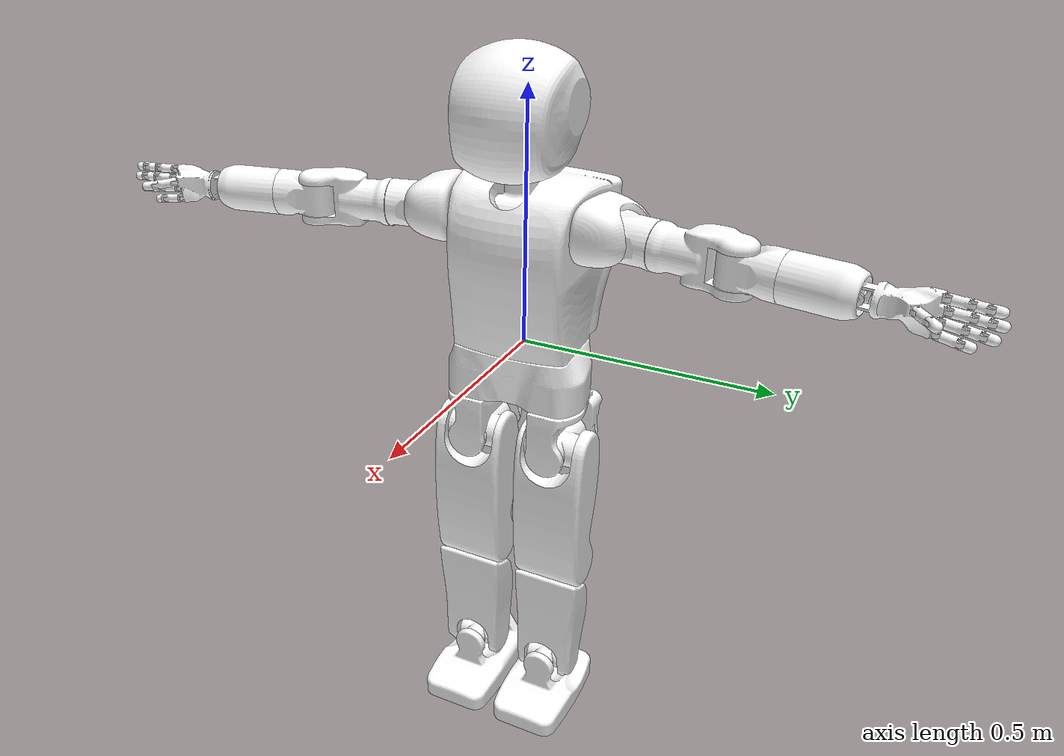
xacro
<?xml version="1.0"?>
<robot name="ar601" xmlns:xacro="http://www.ros.org/wiki/xacro">

    <xacro:include filename="$(find ar601_description)/urdf/common.xacro"/>
    <xacro:include filename="$(find ar601_description)/urdf/helper_macros.urdf.xacro"/>

    <xacro:include filename="$(find ar601_description)/urdf/ar601_primitive_collision_geoms.urdf.xacro"/>

    <xacro:include filename="$(find ar601_description)/urdf/ar601_original_inertia.urdf.xacro"/>
    <!-- NOT FIXED: -->
    <xacro:include filename="$(find ar601_description)/urdf/arm/ar601_arm.urdf.xacro"/>
    <xacro:include filename="$(find ar601_description)/urdf/arm/ar601_wrist.urdf.xacro"/>
    <!-- FIXED: -->
    <xacro:include filename="$(find ar601_description)/urdf/leg/ar601_leg_fixed.urdf.xacro"/>
    <xacro:include filename="$(find ar601_description)/urdf/torso/ar601_torso_fixed_no_collision.urdf.xacro"/>
    <xacro:include filename="$(find ar601_description)/urdf/head/ar601_head_fixed_no_collision.urdf.xacro"/>

    <ar601_torso_macro/>
    <ar601_arm_macro/>
    <ar601_wrist_macro/>
    <ar601_head_macro/>
    <ar601_leg_macro/>

    <xacro:include filename="$(find ar601_description)/gazebo/gazebo.urdf.xacro"/>

</robot>

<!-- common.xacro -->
<robot xmlns:xacro="http://www.ros.org/wiki/xacro">

  <!-- Joint dynamics -->

  <xacro:property name="leg_joint_friction"   value="0.1" />
  <xacro:property name="leg_joint_damping"  value="10.0" /> <!-- seems proper 10-20 -->
  <xacro:property name="arm_joint_friction"   value="1" />
  <xacro:property name="arm_joint_damping"  value="15" />
  <xacro:property name="head_joint_friction"   value="100.0" />
  <xacro:property name="head_joint_damping"  value="0.0" />
  <xacro:property name="torso_joint_friction"   value="100.0" />
  <xacro:property name="torso_joint_damping"  value="0.0" />
  <xacro:property name="wrist_joint_friction"   value="100.0" />
  <xacro:property name="wrist_joint_damping"  value="0.0" />

 <!--  NOMINAL EFFORT VALUES -->

<!--   STALL EFFORT VALUES -->

  <!--   30% STALL EFFORT VALUES -->

  <xacro:property name="hip_yaw_max_effort"  value="60.0" />
  <xacro:property name="hip_max_effort"  value="250.0" />
  <xacro:property name="knee_max_effort"  value="220.0" />
  <xacro:property name="ankle_max_effort"  value="60.0" />

    <!--   TEST STALL EFFORT VALUES -->

  <xacro:property name="ground_kp"  value="1000000.0" />
  <xacro:property name="ground_kd"  value="10000.0" />
  <xacro:property name="ground_mu1"  value="1.5" />
  <xacro:property name="ground_mu2"  value="1.5" />

</robot>

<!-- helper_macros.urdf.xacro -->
<robot  name="ar601" xmlns:xacro="http://www.ros.org/wiki/xacro">

   <xacro:macro name="joint_transmission_macro" params="joint_name">
    <transmission name="${joint_name}_transmssion">
      <type>transmission_interface/SimpleTransmission</type>
      <joint name="${joint_name}">
        <hardwareInterface>hardware_interface/EffortJointInterface</hardwareInterface>
      </joint>
      <actuator name="${joint_name}_motor">
        <hardwareInterface>EffortJointInterface</hardwareInterface>
        <mechanicalReduction>1</mechanicalReduction>
      </actuator>
    </transmission>
    <gazebo reference="${joint_name}">
      <implicitSpringDamper>1</implicitSpringDamper>
    </gazebo>
  </xacro:macro>

  <xacro:macro name="inertial_constant_macro" >
    <inertial>
      <mass value="0.5" />
      <origin xyz="0 0 0" />
      <inertia ixx="0.1" ixy="0.0" ixz="0.0"
               iyy="0.1" iyz="0.0"
               izz="0.1" />
    </inertial>
  </xacro:macro>

  <xacro:macro name="inertial_cuboid_macro" params="mass x_length y_length z_length">
    <inertial>
      <mass value="${mass}" />
      <origin xyz="0 0 0" />
      <inertia ixx="${(1/12) * mass* (y_length*y_length+ z_length*z_length)}" ixy="0.0" ixz="0.0"
               iyy="${(1/12) * mass* (x_length*x_length+ z_length*z_length)}" iyz="0.0"
               izz="${(1/12) * mass* (x_length*x_length+ y_length*y_length)}" />
    </inertial>
  </xacro:macro>

  <xacro:macro name="inertial_cuboid__with_pose_macro" params="mass x_length y_length z_length *origin">
    <inertial>
      <xacro:insert_block name="origin"/>
      <mass value="${mass}" />
      <inertia ixx="${(1/12) * mass* (y_length*y_length+ z_length*z_length)}" ixy="0.0" ixz="0.0"
               iyy="${(1/12) * mass* (x_length*x_length+ z_length*z_length)}" iyz="0.0"
               izz="${(1/12) * mass* (x_length*x_length+ y_length*y_length)}" />
    </inertial>
  </xacro:macro>

  <xacro:macro name="inertial_sphere_macro" params="mass diameter">
    <inertial>
      <mass value="${mass}" />
      <origin xyz="0 0 0" />
      <inertia ixx="${(2/5) * mass* ( (diameter*0.5)) * (diameter*0.5))}" ixy="0.0" ixz="0.0"
               iyy="${(2/5) * mass* ( (diameter*0.5)) * (diameter*0.5))}" iyz="0.0"
               izz="${(2/5) * mass* ( (diameter*0.5)) * (diameter*0.5))}" />
    </inertial>
  </xacro:macro>

  <xacro:macro name="inertial_sphere_with_pose_macro" params="mass diameter *origin">
    <inertial>
      <xacro:insert_block name="origin"/>
      <mass value="${mass}" />
      <inertia ixx="${(2/5) * mass* ( (diameter*0.5)) * (diameter*0.5))}" ixy="0.0" ixz="0.0"
               iyy="${(2/5) * mass* ( (diameter*0.5)) * (diameter*0.5))}" iyz="0.0"
               izz="${(2/5) * mass* ( (diameter*0.5)) * (diameter*0.5))}" />
    </inertial>
  </xacro:macro>

  <xacro:macro name="visual_macro" params="name">
    <visual>
      <origin
        xyz="0 0 0"
        rpy="0 0 0" />
      <geometry>
        <mesh
          filename="package://ar601_description/meshes/${name}.STL" />
      </geometry>
      <material
        name="">
        <color
          rgba="1 1 1 1" />
      </material>
    </visual>
  </xacro:macro>

  <xacro:macro name="collision_mesh_macro" params="name">
      <collision>
      <origin
        xyz="0 0 0"
        rpy="0 0 0" />
      <geometry>
        <mesh
          filename="package://ar601_description/meshes/${name}.STL" />
      </geometry>
    </collision>
  </xacro:macro>

  <xacro:macro name="link_macro" params="name">
    <link
      name="${name}">
      <xacro:call macro="${name}_inertial_macro"/>
      <xacro:call macro="${name}_collision_geom_macro"/>
      <visual_macro name="${name}" />
    </link>
  </xacro:macro>

  <xacro:macro name="link_macro_2" params="name">
    <link
      name="${name}">
      <xacro:call macro="${name}_inertial_macro"/>
      <visual_macro name="${name}" />
    </link>
  </xacro:macro>

</robot>

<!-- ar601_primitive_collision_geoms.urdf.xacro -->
<robot name="ar601" xmlns:xacro="http://www.ros.org/wiki/xacro">

  <xacro:include filename="$(find ar601_description)/urdf/head/ar601_head_primitive_collision_geoms.urdf.xacro" />
  <xacro:include filename="$(find ar601_description)/urdf/leg/ar601_leg_primitive_collision_geoms.urdf.xacro" />
  <xacro:include filename="$(find ar601_description)/urdf/arm/ar601_arm_primitive_collision_geoms.urdf.xacro" />
  <xacro:include filename="$(find ar601_description)/urdf/arm/ar601_wrist_primitive_collision_geoms.urdf.xacro" />
  <xacro:include filename="$(find ar601_description)/urdf/torso/ar601_torso_primitive_collision_geoms.urdf.xacro" />

</robot>

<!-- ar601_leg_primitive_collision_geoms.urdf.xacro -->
<robot  name="robotis_op2" xmlns:xacro="http://www.ros.org/wiki/xacro">

<xacro:macro name="LPelvis_collision_geom_macro">
    <collision>
      <origin xyz="0.000000 -0.010580 0.028437" />
      <geometry>
        <box size="0.045 0.08175 0.028652" />
      </geometry>
    </collision>
</xacro:macro>

<xacro:macro name="LHip_collision_geom_macro">
    <collision>
      <origin xyz="0.000079 0.018242 0.013873" />
      <geometry>
        <box size="0.001 0.001 0.001"/>
      </geometry>
    </collision>
</xacro:macro>

<xacro:macro name="LThigh_collision_geom_macro">
    <collision>
      <origin xyz="-0.062965 -0.000323 0.000692" />
      <geometry>
        <box size="0.093 0.035 0.045"/>
      </geometry>
    </collision>
</xacro:macro>

<xacro:macro name="LTibia_collision_geom_macro">
    <collision>
      <origin xyz="-0.053955 0.006548 -0.000592" />
      <geometry>
        <box size="0.093 0.035 0.045"/>
      </geometry>
    </collision>
</xacro:macro>

<xacro:macro name="LAnkle_collision_geom_macro">
    <collision>
      <origin xyz="-0.000214 -0.018536 0.013873" />
      <geometry>
        <box size="0.028652 0.08175 0.045"/>
      </geometry>
    </collision>
</xacro:macro>

<xacro:macro name="LFoot_collision_geom_macro">
    <collision>
      <origin xyz="0.02 0 -0.05275" />
      <geometry>
        <box size="0.234 0.134 0.1055"/>
      </geometry>
    </collision>
</xacro:macro>

<xacro:macro name="RPelvis_collision_geom_macro">
    <collision>
      <origin xyz="0.000000 0.010580 0.028437" />
      <geometry>
        <box size="0.045 0.08175 0.028652" />
      </geometry>
    </collision>
</xacro:macro>

<xacro:macro name="RHip_collision_geom_macro">
    <collision>
      <origin xyz="0.000079 -0.018242 0.0138735" />
      <geometry>
        <box size="0.001 0.001 0.001"/>
      </geometry>
    </collision>
</xacro:macro>

<xacro:macro name="RThigh_collision_geom_macro">
    <collision>
      <origin xyz="0.062965 -0.000323 0.000692" />
      <geometry>
        <box size="0.093 0.035 0.045"/>
      </geometry>
    </collision>
</xacro:macro>

<xacro:macro name="RTibia_collision_geom_macro">
    <collision>
      <origin xyz="0.053955 0.006548 -0.000592" />
      <geometry>
        <box size="0.093 0.035 0.045"/>
      </geometry>
    </collision>
</xacro:macro>

<xacro:macro name="RAnkle_collision_geom_macro">
    <collision>
      <origin xyz="-0.000214 -0.018536 0.013873" />
      <geometry>
        <box size="0.028652 0.08175 0.045"/>
      </geometry>
    </collision>
</xacro:macro>

<xacro:macro name="RFoot_collision_geom_macro">
    <collision>
      <origin xyz="0.02 0 -0.05275" />
      <geometry>
        <box size="0.234 0.134 0.1055"/>
      </geometry>
    </collision>
</xacro:macro>

</robot>

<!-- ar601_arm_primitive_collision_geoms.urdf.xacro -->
<robot  name="ar601" xmlns:xacro="http://www.ros.org/wiki/xacro">

<xacro:macro name="LShoulder1_collision_geom_macro">
    <collision>
      <origin xyz="-0.0031158909 0.020443695 -0.019663084" />
      <geometry>
        <box size="0.001 0.001 0.001"  scale="1 1 1"/>
      </geometry>
    </collision>
</xacro:macro>

<xacro:macro name="RShoulder1_collision_geom_macro">
    <collision>
      <origin xyz="-0.013522619 -0.010264050 0.0013935747" />
      <geometry>
        <box size="0.016 0.033 0.02165" />
      </geometry>
    </collision>
</xacro:macro>

<xacro:macro name="LShoulder2_collision_geom_macro">
    <collision>
      <origin xyz="-0.036239 0.000734 0.000660" />
      <geometry>
        <box size="0.06 0.032 0.035" />
      </geometry>
    </collision>
</xacro:macro>

<xacro:macro name="RShoulder2_collision_geom_macro">
    <collision>
      <origin xyz="0.016 0.016 0" rpy="0 0 0" />
      <geometry>
        <box size="0.032 0.032 0.035" />
      </geometry>
    </collision>
</xacro:macro>

<xacro:macro name="LShoulder3_collision_geom_macro">
    <collision>
      <origin xyz="0.016 0 0" rpy="0 0 0" />
      <geometry>
        <box size="0.064 0.032 0.032" />
      </geometry>
    </collision>
</xacro:macro>

<xacro:macro name="RShoulder3_collision_geom_macro">
    <collision>
      <geometry>
        <box size="0.032 0.005 0.032" />
      </geometry>
    </collision>
</xacro:macro>

<xacro:macro name="LElbow_collision_geom_macro">
    <collision>
      <origin xyz="0.016 0 0" rpy="0 0 0" />
      <geometry>
        <box size="0.032 0.005 0.032" />
      </geometry>
    </collision>
</xacro:macro>

<xacro:macro name="RElbow_collision_geom_macro">
    <collision>
      <geometry>
        <box size="0.001 0.001 0.001" />
      </geometry>
    </collision>
</xacro:macro>

<xacro:macro name="LArm_collision_geom_macro">
    <collision>
      <origin xyz="-0.013523 0.010264 0.001394" />
      <geometry>
        <box size="0.016 0.033 0.02165" />
      </geometry>
    </collision>
</xacro:macro>

<xacro:macro name="RArm_collision_geom_macro">
    <collision>
      <origin xyz="-0.036239 0.000734 -0.000660" />
      <geometry>
        <box size="0.06 0.032 0.035"/>
      </geometry>
    </collision>
</xacro:macro>

</robot>

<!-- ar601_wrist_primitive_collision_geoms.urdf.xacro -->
<robot  name="ar601" xmlns:xacro="http://www.ros.org/wiki/xacro">

<xacro:macro name="LWrist1_collision_geom_macro">
    <collision>
      <origin xyz="-0.0031158909 0.020443695 -0.019663084" />
      <geometry>
        <box size="0.001 0.001 0.001"  scale="1 1 1"/>
      </geometry>
    </collision>
</xacro:macro>

<xacro:macro name="RWrist1_collision_geom_macro">
    <collision>
      <origin xyz="-0.013522619 -0.010264050 0.0013935747" />
      <geometry>
        <box size="0.016 0.033 0.02165" />
      </geometry>
    </collision>
</xacro:macro>

<xacro:macro name="LWrist2_collision_geom_macro">
    <collision>
      <origin xyz="-0.036239 0.000734 0.000660" />
      <geometry>
        <box size="0.06 0.032 0.035" />
      </geometry>
    </collision>
</xacro:macro>

<xacro:macro name="RWrist2_collision_geom_macro">
    <collision>
      <origin xyz="0.016 0.016 0" rpy="0 0 0" />
      <geometry>
        <box size="0.032 0.032 0.035" />
      </geometry>
    </collision>
</xacro:macro>

<xacro:macro name="LFinger1_1_collision_geom_macro">
    <collision>
      <origin xyz="0.016 0 0" rpy="0 0 0" />
      <geometry>
        <box size="0.064 0.032 0.032" />
      </geometry>
    </collision>
</xacro:macro>

<xacro:macro name="RFinger1_1_collision_geom_macro">
    <collision>
      <geometry>
        <box size="0.032 0.005 0.032" />
      </geometry>
    </collision>
</xacro:macro>

<xacro:macro name="LFinger1_2_collision_geom_macro">
    <collision>
      <origin xyz="0.016 0 0" rpy="0 0 0" />
      <geometry>
        <box size="0.032 0.005 0.032" />
      </geometry>
    </collision>
</xacro:macro>

<xacro:macro name="RFinger1_2_collision_geom_macro">
    <collision>
      <geometry>
        <box size="0.001 0.001 0.001" />
      </geometry>
    </collision>
</xacro:macro>

<xacro:macro name="LFinger2_1_collision_geom_macro">
    <collision>
      <origin xyz="-0.013523 0.010264 0.001394" />
      <geometry>
        <box size="0.016 0.033 0.02165" />
      </geometry>
    </collision>
</xacro:macro>

<xacro:macro name="RFinger2_1_collision_geom_macro">
    <collision>
      <origin xyz="-0.036239 0.000734 -0.000660" />
      <geometry>
        <box size="0.06 0.032 0.035"/>
      </geometry>
    </collision>
</xacro:macro>

<xacro:macro name="LFinger2_2_collision_geom_macro">
    <collision>
      <origin xyz="-0.036239 0.000734 -0.000660" />
      <geometry>
        <box size="0.06 0.032 0.035"/>
      </geometry>
    </collision>
</xacro:macro>

<xacro:macro name="RFinger2_2_collision_geom_macro">
    <collision>
      <origin xyz="-0.036239 0.000734 -0.000660" />
      <geometry>
        <box size="0.06 0.032 0.035"/>
      </geometry>
    </collision>
</xacro:macro>

<xacro:macro name="LFinger2_3_collision_geom_macro">
    <collision>
      <origin xyz="-0.036239 0.000734 -0.000660" />
      <geometry>
        <box size="0.06 0.032 0.035"/>
      </geometry>
    </collision>
</xacro:macro>

<xacro:macro name="RFinger2_3_collision_geom_macro">
    <collision>
      <origin xyz="-0.036239 0.000734 -0.000660" />
      <geometry>
        <box size="0.06 0.032 0.035"/>
      </geometry>
    </collision>
</xacro:macro>

<xacro:macro name="LFinger3_1_collision_geom_macro">
    <collision>
      <origin xyz="-0.036239 0.000734 -0.000660" />
      <geometry>
        <box size="0.06 0.032 0.035"/>
      </geometry>
    </collision>
</xacro:macro>

<xacro:macro name="RFinger3_1_collision_geom_macro">
    <collision>
      <origin xyz="-0.036239 0.000734 -0.000660" />
      <geometry>
        <box size="0.06 0.032 0.035"/>
      </geometry>
    </collision>
</xacro:macro>

<xacro:macro name="LFinger3_2_collision_geom_macro">
    <collision>
      <origin xyz="-0.036239 0.000734 -0.000660" />
      <geometry>
        <box size="0.06 0.032 0.035"/>
      </geometry>
    </collision>
</xacro:macro>

<xacro:macro name="RFinger3_2_collision_geom_macro">
    <collision>
      <origin xyz="-0.036239 0.000734 -0.000660" />
      <geometry>
        <box size="0.06 0.032 0.035"/>
      </geometry>
    </collision>
</xacro:macro>

<xacro:macro name="LFinger3_3_collision_geom_macro">
    <collision>
      <origin xyz="-0.036239 0.000734 -0.000660" />
      <geometry>
        <box size="0.06 0.032 0.035"/>
      </geometry>
    </collision>
</xacro:macro>

<xacro:macro name="RFinger3_3_collision_geom_macro">
    <collision>
      <origin xyz="-0.036239 0.000734 -0.000660" />
      <geometry>
        <box size="0.06 0.032 0.035"/>
      </geometry>
    </collision>
</xacro:macro>

<xacro:macro name="LFinger4_1_collision_geom_macro">
    <collision>
      <origin xyz="-0.036239 0.000734 -0.000660" />
      <geometry>
        <box size="0.06 0.032 0.035"/>
      </geometry>
    </collision>
</xacro:macro>

<xacro:macro name="RFinger4_1_collision_geom_macro">
    <collision>
      <origin xyz="-0.036239 0.000734 -0.000660" />
      <geometry>
        <box size="0.06 0.032 0.035"/>
      </geometry>
    </collision>
</xacro:macro>

<xacro:macro name="LFinger4_2_collision_geom_macro">
    <collision>
      <origin xyz="-0.036239 0.000734 -0.000660" />
      <geometry>
        <box size="0.06 0.032 0.035"/>
      </geometry>
    </collision>
</xacro:macro>

<xacro:macro name="RFinger4_2_collision_geom_macro">
    <collision>
      <origin xyz="-0.036239 0.000734 -0.000660" />
      <geometry>
        <box size="0.06 0.032 0.035"/>
      </geometry>
    </collision>
</xacro:macro>

<xacro:macro name="LFinger4_3_collision_geom_macro">
    <collision>
      <origin xyz="-0.036239 0.000734 -0.000660" />
      <geometry>
        <box size="0.06 0.032 0.035"/>
      </geometry>
    </collision>
</xacro:macro>

<xacro:macro name="RFinger4_3_collision_geom_macro">
    <collision>
      <origin xyz="-0.036239 0.000734 -0.000660" />
      <geometry>
        <box size="0.06 0.032 0.035"/>
      </geometry>
    </collision>
</xacro:macro>

<xacro:macro name="LFinger5_1_collision_geom_macro">
    <collision>
      <origin xyz="-0.036239 0.000734 -0.000660" />
      <geometry>
        <box size="0.06 0.032 0.035"/>
      </geometry>
    </collision>
</xacro:macro>

<xacro:macro name="RFinger5_1_collision_geom_macro">
    <collision>
      <origin xyz="-0.036239 0.000734 -0.000660" />
      <geometry>
        <box size="0.06 0.032 0.035"/>
      </geometry>
    </collision>
</xacro:macro>

<xacro:macro name="LFinger5_2_collision_geom_macro">
    <collision>
      <origin xyz="-0.036239 0.000734 -0.000660" />
      <geometry>
        <box size="0.06 0.032 0.035"/>
      </geometry>
    </collision>
</xacro:macro>

<xacro:macro name="RFinger5_2_collision_geom_macro">
    <collision>
      <origin xyz="-0.036239 0.000734 -0.000660" />
      <geometry>
        <box size="0.06 0.032 0.035"/>
      </geometry>
    </collision>
</xacro:macro>

</robot>

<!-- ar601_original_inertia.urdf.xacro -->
<robot name="ar601" xmlns:xacro="http://www.ros.org/wiki/xacro">

  <xacro:include filename="$(find ar601_description)/urdf/head/ar601_head_original_inertia.urdf.xacro" />
  <xacro:include filename="$(find ar601_description)/urdf/leg/ar601_leg_original_inertia.urdf.xacro" />
  <xacro:include filename="$(find ar601_description)/urdf/arm/ar601_arm_original_inertia.urdf.xacro" />
  <xacro:include filename="$(find ar601_description)/urdf/arm/ar601_wrist_original_inertia.urdf.xacro" />
  <xacro:include filename="$(find ar601_description)/urdf/torso/ar601_torso_original_inertia.urdf.xacro" />

</robot>

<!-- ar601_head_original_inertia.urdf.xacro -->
<robot  name="robotis_op2" xmlns:xacro="http://www.ros.org/wiki/xacro">

<xacro:macro name="Neck1_inertial_macro">
    <inertial>
      <origin
        xyz="-0.0222927487404251 4.47895651753766E-05 0.0310409976295018"
        rpy="0 0 0" />
      <mass
        value="0.657320428434859" />
      <inertia
        ixx="0.00102025512184757"
        ixy="0.0"
        ixz="0.0"
        iyy="0.00120134781263084"
        iyz="0.0"
        izz="0.000718372081172033" />
    </inertial>
</xacro:macro>

<xacro:macro name="Neck2_inertial_macro">
    <inertial>
      <origin
        xyz="-9.38630904016337E-06 4.42165265520866E-05 -0.0162910790688592"
        rpy="0 0 0" />
      <mass
        value="0.0167205530633327" />
      <inertia
        ixx="6.21421984464677E-06"
        ixy="0.0"
        ixz="0.0"
        iyy="1.28553666419653E-05"
        iyz="0.0"
        izz="1.23400064727747E-05" />
    </inertial>
</xacro:macro>

<xacro:macro name="Head1_inertial_macro">
    <inertial>
      <origin
        xyz="-9.38941181994821E-06 4.42605420928731E-05 -2.87270207621759E-13"
        rpy="0 0 0" />
      <mass
        value="0.140258674510404" />
      <inertia
        ixx="0.000255527506833601"
        ixy="0.0"
        ixz="0.0"
        iyy="2.64614495249746E-05"
        iyz="0.0"
        izz="0.000265796055755356" />
    </inertial>
</xacro:macro>

<xacro:macro name="Head2_inertial_macro">
    <inertial>
      <origin
        xyz="0.0367567218407244 6.13069479271212E-05 0.0741939345619121"
        rpy="0 0 0" />
      <mass
        value="5.51543814682702" />
      <inertia
        ixx="0.0328094469174202"
        ixy="0.0"
        ixz="0.0"
        iyy="0.0336400080305931"
        iyz="0.0"
        izz="0.0379699861871773" />
    </inertial>
</xacro:macro>

</robot>

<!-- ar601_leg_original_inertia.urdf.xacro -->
<robot  name="robotis_op2" xmlns:xacro="http://www.ros.org/wiki/xacro">

<xacro:macro name="LPelvis_inertial_macro">
    <inertial>
      <origin
        xyz="-0.034 0.0 0.054"
        rpy="0 0 0" />
      <mass
        value="0.908" />
      <inertia
        ixx="0.00151"
        ixy="0.0"
        ixz="0.0"
        iyy="0.00414"
        iyz="0.0"
        izz="0.0037" />
    </inertial>
</xacro:macro>

<xacro:macro name="RPelvis_inertial_macro">
    <inertial>
      <origin
        xyz="-0.034 0.0 0.054"
        rpy="0 0 0" />
      <mass
        value="0.908" />
      <inertia
        ixx="0.00151"
        ixy="0.0"
        ixz="0.0"
        iyy="0.00414"
        iyz="0.0"
        izz="0.0037" />
    </inertial>
</xacro:macro>

<xacro:macro name="LHip_inertial_macro">
    <inertial>
      <origin
        xyz="-0.014 0.0 0.0"
        rpy="0 0 0" />
      <mass
        value="0.755" />
      <inertia
        ixx="0.000786"
        ixy="0.0"
        ixz="0.0"
        iyy="0.00127"
        iyz="0.0"
        izz="0.00156" />
    </inertial>
</xacro:macro>

<xacro:macro name="RHip_inertial_macro">
    <inertial>
      <origin
        xyz="-0.014 0.0 0.0"
        rpy="0 0 0" />
      <mass
        value="0.755" />
      <inertia
        ixx="0.000786"
        ixy="0.0"
        ixz="0.0"
        iyy="0.00127"
        iyz="0.0"
        izz="0.00156" />
    </inertial>
</xacro:macro>

<xacro:macro name="LThigh_inertial_macro">
    <inertial>
      <origin
        xyz="0.008 0.007 -0.17"
        rpy="0 0 0" />
      <mass
        value="4.04" />
      <inertia
        ixx="0.0407"
        ixy="0.0"
        ixz="0.0"
        iyy="0.0352"
        iyz="0.0"
        izz="0.0117" />
    </inertial>
</xacro:macro>

<xacro:macro name="RThigh_inertial_macro">
    <inertial>
      <origin
        xyz="0.008 -0.007 -0.17"
        rpy="0 0 0" />
      <mass
        value="4.04" />
      <inertia
        ixx="0.0407"
        ixy="0.0"
        ixz="0.0"
        iyy="0.0352"
        iyz="0.0"
        izz="0.0117" />
    </inertial>
</xacro:macro>

<xacro:macro name="LTibia_inertial_macro">
    <inertial>
      <origin
        xyz="0.002 0.004 -0.153"
        rpy="0 0 0" />
      <mass
        value="2.441" />
      <inertia
        ixx="0.0138"
        ixy="0.0"
        ixz="0.0"
        iyy="0.0113"
        iyz="0.0"
        izz="0.00566" />
    </inertial>
</xacro:macro>

<xacro:macro name="RTibia_inertial_macro">
    <inertial>
      <origin
        xyz="0.002 -0.004 -0.153"
        rpy="0 0 0" />
      <mass
        value="2.441" />
      <inertia
        ixx="0.0138"
        ixy="0.0"
        ixz="0.0"
        iyy="0.0113"
        iyz="0.0"
        izz="0.00566" />
    </inertial>
</xacro:macro>

<xacro:macro name="LAnkle_inertial_macro">
    <inertial>
      <origin
        xyz="-0.007 -0.001 0.0"
        rpy="0 0 0" />
      <mass
        value="0.297" />
      <inertia
        ixx="0.000161"
        ixy="0.0"
        ixz="0.0"
        iyy="0.000283"
        iyz="0.0"
        izz="0.000346" />
    </inertial>
</xacro:macro>

<xacro:macro name="RAnkle_inertial_macro">
    <inertial>
      <origin
        xyz="-0.007 0.001 0.0"
        rpy="0 0 0" />
      <mass
        value="0.297" />
      <inertia
        ixx="0.000161"
        ixy="0.0"
        ixz="0.0"
        iyy="0.000283"
        iyz="0.0"
        izz="0.000346" />
    </inertial>
</xacro:macro>

<xacro:macro name="LFoot_inertial_macro">
    <inertial>
      <origin
        xyz="0.008 -0.004 -0.072"
        rpy="0 0 0" />
      <mass
        value="2.208" />
      <inertia
        ixx="0.00541"
        ixy="0.0"
        ixz="0.0"
        iyy="0.0129"
        iyz="0.0"
        izz="0.0152" />
    </inertial>
</xacro:macro>

<xacro:macro name="RFoot_inertial_macro">
    <inertial>
      <origin
        xyz="0.008 0.004 -0.072"
        rpy="0 0 0" />
      <mass
        value="2.208" />
      <inertia
        ixx="0.00541"
        ixy="0.0"
        ixz="0.0"
        iyy="0.0129"
        iyz="0.0"
        izz="0.0152" />
    </inertial>
</xacro:macro>

</robot>

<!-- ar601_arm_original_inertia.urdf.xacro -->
<robot  name="ar601" xmlns:xacro="http://www.ros.org/wiki/xacro">

<xacro:macro name="LShoulder1_inertial_macro">
    <inertial>
      <origin
        xyz="0.0119 0.0447 0.0125"
        rpy="0 0 0" />
      <mass
        value="0.702" />
      <inertia
        ixx="0.00107"
        ixy="0.0"
        ixz="0.0"
        iyy="0.00208"
        iyz="0.0"
        izz="0.00181" />
    </inertial>
</xacro:macro>

<xacro:macro name="RShoulder1_inertial_macro">
    <inertial>
      <origin
        xyz="0.0119 -0.0447 0.0125"
        rpy="0 0 0" />
      <mass
        value="0.702" />
      <inertia
        ixx="0.00107"
        ixy="0.0"
        ixz="0.0"
        iyy="0.00208"
        iyz="0.0"
        izz="0.00181" />
    </inertial>
</xacro:macro>

<xacro:macro name="LShoulder2_inertial_macro">
    <inertial>
      <origin
        xyz="0.0512 0.0264 0.00120"
        rpy="0 0 0" />
      <mass
        value="0.710" />
      <inertia
        ixx="0.00114"
        ixy="0.0"
        ixz="0.0"
        iyy="0.000678"
        iyz="0.0"
        izz="0.00118" />
    </inertial>
</xacro:macro>

<xacro:macro name="RShoulder2_inertial_macro">
    <inertial>
      <origin
        xyz="0.0512 -0.0264 0.00120"
        rpy="0 0 0" />
      <mass
        value="0.710" />
      <inertia
        ixx="0.00114"
        ixy="0.0"
        ixz="0.0"
        iyy="0.000678"
        iyz="0.0"
        izz="0.00118" />
    </inertial>
</xacro:macro>

<xacro:macro name="LShoulder3_inertial_macro">
    <inertial>
      <origin
        xyz="0 0.0754 0"
        rpy="0 0 0" />
      <mass
        value="0.924" />
      <inertia
        ixx="0.00281"
        ixy="0.0"
        ixz="0.0"
        iyy="0.00111"
        iyz="0.0"
        izz="0.00248" />
    </inertial>
</xacro:macro>

<xacro:macro name="RShoulder3_inertial_macro">
    <inertial>
      <origin
        xyz="0 -0.0754 0"
        rpy="0 0 0" />
      <mass
        value="0.923986049465604" />
      <inertia
        ixx="0.00281"
        ixy="0.0"
        ixz="0.0"
        iyy="0.00111"
        iyz="0.0"
        izz="0.00248" />
    </inertial>
</xacro:macro>

<xacro:macro name="LElbow_inertial_macro">
    <inertial>
      <origin
        xyz="-0.006 0.0268 -0.0306"
        rpy="0 0 0" />
      <mass
        value="0.067" />
      <inertia
        ixx="0.000109"
        ixy="0.0"
        ixz="0.0"
        iyy="8.7E-05"
        iyz="0.0"
        izz="0.000124" />
    </inertial>
</xacro:macro>

<xacro:macro name="RElbow_inertial_macro">
    <inertial>
      <origin
        xyz="-0.006 -0.0268 -0.0306"
        rpy="0 0 0" />
      <mass
        value="0.067" />
      <inertia
        ixx="0.000109"
        ixy="0.0"
        ixz="0.0"
        iyy="8.7E-05"
        iyz="0.0"
        izz="0.000124" />
    </inertial>
</xacro:macro>

<xacro:macro name="LArm_inertial_macro">
    <inertial>
      <origin
        xyz="0 0.0546 0.0003"
        rpy="0 0 0" />
      <mass
        value="0.698" />
      <inertia
        ixx="0.00106"
        ixy="0.0"
        ixz="0.0"
        iyy="0.000705"
        iyz="0.0"
        izz="0.00107" />
    </inertial>
</xacro:macro>

<xacro:macro name="RArm_inertial_macro">
    <inertial>
      <origin
        xyz="0 -0.0546 0.0003"
        rpy="0 0 0" />
      <mass
        value="0.698" />
      <inertia
        ixx="0.00106"
        ixy="0.0"
        ixz="0.0"
        iyy="0.000705"
        iyz="0.0"
        izz="0.00107" />
    </inertial>
</xacro:macro>

</robot>

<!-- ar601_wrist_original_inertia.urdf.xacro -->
<robot  name="ar601" xmlns:xacro="http://www.ros.org/wiki/xacro">

<xacro:macro name="LWrist1_inertial_macro">
    <inertial>
      <origin
        xyz="8.69257801849876E-09 0 -8.69257799074319E-09"
        rpy="0 0 0" />
      <mass
        value="0.00354841244692992" />
      <inertia
        ixx="0"
        ixy="0.0"
        ixz="0.0"
        iyy="0"
        iyz="0.0"
        izz="0" />
    </inertial>
</xacro:macro>

<xacro:macro name="RWrist1_inertial_macro">
    <inertial>
      <origin
        xyz="-8.69257804625434E-09 -1.11022302462516E-16 -8.69257799074319E-09"
        rpy="0 0 0" />
      <mass
        value="0.00354841244692995" />
      <inertia
        ixx="0"
        ixy="0.0"
        ixz="0.0"
        iyy="0"
        iyz="0.0"
        izz="0" />
    </inertial>
</xacro:macro>

<xacro:macro name="LWrist2_inertial_macro">
    <inertial>
      <origin
        xyz="-0.00320146376134629 0.0679998358897447 -0.00139578498789278"
        rpy="0 0 0" />
      <mass
        value="0.106503207491186" />
      <inertia
        ixx="0.000160140258431206"
        ixy="0.0"
        ixz="0.0"
        iyy="7.18787865803972E-05"
        iyz="0.0"
        izz="0.000161242457643774" />
    </inertial>
</xacro:macro>

<xacro:macro name="RWrist2_inertial_macro">
    <inertial>
      <origin
        xyz="-0.0032015407111433 -0.0680002451287101 -0.00139605167258255"
        rpy="0 0 0" />
      <mass
        value="0.106500992906003" />
      <inertia
        ixx="0.000160137434624347"
        ixy="0.0"
        ixz="0.0"
        iyy="7.18756092477474E-05"
        iyz="0.0"
        izz="0.000161241258582528" />
    </inertial>
</xacro:macro>

<xacro:macro name="LFinger1_1_inertial_macro">
    <inertial>
      <origin
        xyz="0.017392149570403 0.0125768799508672 -0.00399999938736578"
        rpy="0 0 0" />
      <mass
        value="0.00794971429092078" />
      <inertia
        ixx="6.15322908627996E-07"
        ixy="0.0"
        ixz="0.0"
        iyy="8.19342049389076E-07"
        iyz="0.0"
        izz="1.16701160817821E-06" />
    </inertial>
</xacro:macro>

<xacro:macro name="RFinger1_1_inertial_macro">
    <inertial>
      <origin
        xyz="0.018058 -0.011601 -0.004"
        rpy="0 0 0" />
      <mass
        value="0.0079497" />
      <inertia
        ixx="5.7022E-07"
        ixy="0.0"
        ixz="0.0"
        iyy="8.6444E-07"
        iyz="0.0"
        izz="1.167E-06" />
    </inertial>
</xacro:macro>

<xacro:macro name="LFinger1_2_inertial_macro">
    <inertial>
      <origin
        xyz="0.0105994545023848 0.00682969355090124 -0.00399999152754377"
        rpy="0 0 0" />
      <mass
        value="0.0041977190113557" />
      <inertia
        ixx="2.06802404520768E-07"
        ixy="0.0"
        ixz="0.0"
        iyy="2.21544071243177E-07"
        iyz="0.0"
        izz="2.61121380624231E-07" />
    </inertial>
</xacro:macro>

<xacro:macro name="RFinger1_2_inertial_macro">
    <inertial>
      <origin
        xyz="0.0104605997712183 -0.00704052558917401 -0.00400000848701126"
        rpy="0 0 0" />
      <mass
        value="0.00419771897410452" />
      <inertia
        ixx="2.09142237590012E-07"
        ixy="0.0"
        ixz="0.0"
        iyy="2.19204240697583E-07"
        iyz="0.0"
        izz="2.61121384273268E-07" />
    </inertial>
</xacro:macro>

<xacro:macro name="LFinger2_1_inertial_macro">
    <inertial>
      <origin
        xyz="0.00549196215025359 0.0208173591048728 -0.00362500054881426"
        rpy="0 0 0" />
      <mass
        value="0.00794969630364376" />
      <inertia
        ixx="1.07237570353924E-06"
        ixy="0.0"
        ixz="0.0"
        iyy="3.62556603064786E-07"
        iyz="0.0"
        izz="1.16674304524627E-06" />
    </inertial>
</xacro:macro>

<xacro:macro name="RFinger2_1_inertial_macro">
    <inertial>
      <origin
        xyz="0.00466411344108193 -0.0210181956784309 -0.00362576268809778"
        rpy="0 0 0" />
      <mass
        value="0.00794969377283116" />
      <inertia
        ixx="1.09026286614019E-06"
        ixy="0.0"
        ixz="0.0"
        iyy="3.44669160887216E-07"
        iyz="0.0"
        izz="1.16674314947762E-06" />
    </inertial>
</xacro:macro>

<xacro:macro name="LFinger2_2_inertial_macro">
    <inertial>
      <origin
        xyz="0.00506087231326857 0.0156875104338542 -0.00371293073598111"
        rpy="0 0 0" />
      <mass
        value="0.00554910902171019" />
      <inertia
        ixx="4.87095066933935E-07"
        ixy="0.0"
        ixz="0.0"
        iyy="2.47574406917102E-07"
        iyz="0.0"
        izz="5.45118280139522E-07" />
    </inertial>
</xacro:macro>

<xacro:macro name="RFinger2_2_inertial_macro">
    <inertial>
      <origin
        xyz="0.00340591071964673 -0.0161277265396876 -0.00371387542361651"
        rpy="0 0 0" />
      <mass
        value="0.00554910460160714" />
      <inertia
        ixx="5.08721761194374E-07"
        ixy="0.0"
        ixz="0.0"
        iyy="2.25948765171186E-07"
        iyz="0.0"
        izz="5.4511708567559E-07" />
    </inertial>
</xacro:macro>

<xacro:macro name="LFinger2_3_inertial_macro">
    <inertial>
      <origin
        xyz="0.00268001122286671 0.0123904174102188 -0.00377999084881703"
        rpy="0 0 0" />
      <mass
        value="0.00419771959929121" />
      <inertia
        ixx="2.58144318341166E-07"
        ixy="0.0"
        ixz="0.0"
        iyy="1.7023412529365E-07"
        iyz="0.0"
        izz="2.61089320284028E-07" />
    </inertial>
</xacro:macro>

<xacro:macro name="RFinger2_3_inertial_macro">
    <inertial>
      <origin
        xyz="0.00245171343968303 -0.0124374976484516 -0.00378032558892799"
        rpy="0 0 0" />
      <mass
        value="0.00419771964934734" />
      <inertia
        ixx="2.59555350116999E-07"
        ixy="0.0"
        ixz="0.0"
        iyy="1.6882316593225E-07"
        iyz="0.0"
        izz="2.61089184393434E-07" />
    </inertial>
</xacro:macro>

<xacro:macro name="LFinger3_1_inertial_macro">
    <inertial>
      <origin
        xyz="0.00486393266793878 0.0209047085521565 -0.00400000345690754"
        rpy="0 0 0" />
      <mass
        value="0.00794969171707417" />
      <inertia
        ixx="1.0857545480312E-06"
        ixy="0.0"
        ixz="0.0"
        iyy="3.48910305135014E-07"
        iyz="0.0"
        izz="1.16701018610524E-06" />
    </inertial>
</xacro:macro>

<xacro:macro name="RFinger3_1_inertial_macro">
    <inertial>
      <origin
        xyz="0.00455337847888747 -0.0209745421456283 -0.00399999638824711"
        rpy="0 0 0" />
      <mass
        value="0.00794969055324976" />
      <inertia
        ixx="1.09207369431954E-06"
        ixy="0.0"
        ixz="0.0"
        iyy="3.42591157593321E-07"
        iyz="0.0"
        izz="1.16701011250278E-06" />
    </inertial>
</xacro:macro>

<xacro:macro name="LFinger3_2_inertial_macro">
    <inertial>
      <origin
        xyz="0.00465559688611381 0.0157423591331163 -0.00399997065634744"
        rpy="0 0 0" />
      <mass
        value="0.00554910682396278" />
      <inertia
        ixx="4.92692912454704E-07"
        ixy="0.0"
        ixz="0.0"
        iyy="2.41872402469041E-07"
        iyz="0.0"
        izz="5.45222393521601E-07" />
    </inertial>
</xacro:macro>

<xacro:macro name="RFinger3_2_inertial_macro">
    <inertial>
      <origin
        xyz="0.00337177939747289 -0.0160663472035111 -0.00400002877010486"
        rpy="0 0 0" />
      <mass
        value="0.00554910281221021" />
      <inertia
        ixx="5.08879384138404E-07"
        ixy="0.0"
        ixz="0.0"
        iyy="2.25685955064701E-07"
        iyz="0.0"
        izz="5.45222208070927E-07" />
    </inertial>
</xacro:macro>

<xacro:macro name="LFinger3_3_inertial_macro">
    <inertial>
      <origin
        xyz="0.00345549223233155 0.0121265307317509 -0.00400000816255019"
        rpy="0 0 0" />
      <mass
        value="0.00419771963133254" />
      <inertia
        ixx="2.52716242601003E-07"
        ixy="0.0"
        ixz="0.0"
        iyy="1.75630187004288E-07"
        iyz="0.0"
        izz="2.61121310803093E-07" />
    </inertial>
</xacro:macro>

<xacro:macro name="RFinger3_3_inertial_macro">
    <inertial>
      <origin
        xyz="0.00339900717141772 -0.0121424842902205 -0.00399999184428201"
        rpy="0 0 0" />
      <mass
        value="0.00419771964140524" />
      <inertia
        ixx="2.53127549336215E-07"
        ixy="0.0"
        ixz="0.0"
        iyy="1.75218879435412E-07"
        iyz="0.0"
        izz="2.61121309452847E-07" />
    </inertial>
</xacro:macro>

<xacro:macro name="LFinger4_1_inertial_macro">
    <inertial>
      <origin
        xyz="0.00539379528552368 0.0205276813540367 -0.00511722517128993"
        rpy="0 0 0" />
      <mass
        value="0.0079496968084077" />
      <inertia
        ixx="1.07280674359839E-06"
        ixy="0.0"
        ixz="0.0"
        iyy="3.64263032045508E-07"
        iyz="0.0"
        izz="1.16460560772909E-06" />
    </inertial>
</xacro:macro>

<xacro:macro name="RFinger4_1_inertial_macro">
    <inertial>
      <origin
        xyz="0.00516177212610174 -0.0205873675662279 -0.00511674333688239"
        rpy="0 0 0" />
      <mass
        value="0.00794969556236767" />
      <inertia
        ixx="1.0780535958852E-06"
        ixy="0.0"
        ixz="0.0"
        iyy="3.59016267886317E-07"
        iyz="0.0"
        izz="1.16460546770067E-06" />
    </inertial>
</xacro:macro>

<xacro:macro name="LFinger4_2_inertial_macro">
    <inertial>
      <origin
        xyz="0.00428947689637232 0.0156057848703034 -0.00485346295788791"
        rpy="0 0 0" />
      <mass
        value="0.00554910711454078" />
      <inertia
        ixx="4.96905090660544E-07"
        ixy="0.0"
        ixz="0.0"
        iyy="2.38603567768899E-07"
        iyz="0.0"
        izz="5.44279020861715E-07" />
    </inertial>
</xacro:macro>

<xacro:macro name="RFinger4_2_inertial_macro">
    <inertial>
      <origin
        xyz="0.00318340316971605 -0.0158694092251892 -0.00485019942956061"
        rpy="0 0 0" />
      <mass
        value="0.00554910342034866" />
      <inertia
        ixx="5.10293211654034E-07"
        ixy="0.0"
        ixz="0.0"
        iyy="2.25217697925249E-07"
        iyz="0.0"
        izz="5.44276592419134E-07" />
    </inertial>
</xacro:macro>

<xacro:macro name="LFinger4_3_inertial_macro">
    <inertial>
      <origin
        xyz="0.00365609696954247 0.0118305938140987 -0.00465439914376264"
        rpy="0 0 0" />
      <mass
        value="0.00419771176684675" />
      <inertia
        ixx="2.50768591324216E-07"
        ixy="0.0"
        ixz="0.0"
        iyy="1.77858501333368E-07"
        iyz="0.0"
        izz="2.60839634582203E-07" />
    </inertial>
</xacro:macro>

<xacro:macro name="RFinger4_3_inertial_macro">
    <inertial>
      <origin
        xyz="0.0012480368049875 -0.0123238366819444 -0.00464311804847459"
        rpy="0 0 0" />
      <mass
        value="0.00419771960423063" />
      <inertia
        ixx="2.6551390285043E-07"
        ixy="0.0"
        ixz="0.0"
        iyy="1.63121667317206E-07"
        iyz="0.0"
        izz="2.60832210977182E-07" />
    </inertial>
</xacro:macro>

<xacro:macro name="LFinger5_1_inertial_macro">
    <inertial>
      <origin
        xyz="0.00537981182902078 0.0202243856059368 -0.00622065626364918"
        rpy="0 0 0" />
      <mass
        value="0.00794969723008604" />
      <inertia
        ixx="1.07177260958229E-06"
        ixy="0.0"
        ixz="0.0"
        iyy="3.72484968827753E-07"
        iyz="0.0"
        izz="1.15741784875636E-06" />
    </inertial>
</xacro:macro>

<xacro:macro name="RFinger5_1_inertial_macro">
    <inertial>
      <origin
        xyz="0.00544061828037408 -0.020208057141314 -0.00622083122001763"
        rpy="0 0 0" />
      <mass
        value="0.00794969692061838" />
      <inertia
        ixx="1.0703561672966E-06"
        ixy="0.0"
        ixz="0.0"
        iyy="3.73900821619348E-07"
        iyz="0.0"
        izz="1.15741847589617E-06" />
    </inertial>
</xacro:macro>

<xacro:macro name="LFinger5_2_inertial_macro">
    <inertial>
      <origin
        xyz="0.00230556354296731 0.0119034186562637 -0.00529021852627207"
        rpy="0 0 0" />
      <mass
        value="0.00419771225237906" />
      <inertia
        ixx="2.59590700033085E-07"
        ixy="0.0"
        ixz="0.0"
        iyy="1.69906112085547E-07"
        iyz="0.0"
        izz="2.59969821852933E-07" />
    </inertial>
</xacro:macro>

<xacro:macro name="RFinger5_2_inertial_macro">
    <inertial>
      <origin
        xyz="0.00210372072020062 -0.0119417066357316 -0.00528801175808119"
        rpy="0 0 0" />
      <mass
        value="0.00419771917446531" />
      <inertia
        ixx="2.60781054116718E-07"
        ixy="0.0"
        ixz="0.0"
        iyy="1.68718444138267E-07"
        iyz="0.0"
        izz="2.59968376244567E-07" />
    </inertial>
</xacro:macro>

</robot>

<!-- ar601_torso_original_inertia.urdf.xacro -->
<robot  name="robotis_op2" xmlns:xacro="http://www.ros.org/wiki/xacro">

<xacro:macro name="Belly_inertial_macro">
    <inertial>
      <origin
        xyz="0.0087165 3.8567E-07 -0.051657"
        rpy="0 0 0" />
      <mass
        value="4.1266" />
      <inertia
        ixx="0.028323"
        ixy="0.0"
        ixz="0.0"
        iyy="0.011957"
        iyz="0.0"
        izz="0.033839" />
    </inertial>
</xacro:macro>

<xacro:macro name="Torso_inertial_macro">
    <inertial>
      <origin
        xyz="-0.011272 2.1289E-05 0.16761"
        rpy="0 0 0" />
      <mass
        value="17.759" /> <!-- 9 kg should be added to make 65 kg total, or leave it 56 kg if robot with no batteries-->
      <inertia
        ixx="0.23995"
        ixy="0.0"
        ixz="0.0"
        iyy="0.21472"
        iyz="0.0"
        izz="0.17329" />
    </inertial>
</xacro:macro>

</robot>

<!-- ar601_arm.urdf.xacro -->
<robot  name="ar601" xmlns:xacro="http://www.ros.org/wiki/xacro">

<xacro:macro name="ar601_arm_macro">

<link_macro name="LShoulder1"/>
<link_macro name="LShoulder2"/>
<link_macro name="LShoulder3"/>
<link_macro name="LElbow"/>
<link_macro name="LArm"/>

<link_macro name="RShoulder1"/>
<link_macro name="RShoulder2"/>
<link_macro name="RShoulder3"/>
<link_macro name="RElbow"/>
<link_macro name="RArm"/>

  <joint
    name="LShoulderPitch"
    type="revolute">
    <origin
      xyz="0.0081623 0.123 0.255"
      rpy="0 0 -0.18497" />
    <parent
      link="Torso" />
    <child
      link="LShoulder1" />
    <axis
      xyz="0 1 0" />
    <limit
      lower="-1.83259"
      upper="0.08726"
      effort="10"
      velocity="1" />
    <dynamics
      damping="${arm_joint_damping}"
      friction="${arm_joint_friction}" />
  </joint>

  <joint
    name="RShoulderPitch"
    type="revolute">
    <origin
      xyz="0.0081623 -0.123 0.255"
      rpy="0 0 0.18497" />
    <parent
      link="Torso" />
    <child
      link="RShoulder1" />
    <axis
      xyz="0 1 0" />
    <limit
      lower="-1.83259"
      upper="0.08726"
      effort="10"
      velocity="1" />
    <dynamics
      damping="${arm_joint_damping}"
      friction="${arm_joint_friction}" />
  </joint>

  <joint
    name="LShoulderRoll"
    type="revolute">
    <origin
      xyz="-0.05 0.07 0"
      rpy="0 0 0" />
    <parent
      link="LShoulder1" />
    <child
      link="LShoulder2" />
    <axis
      xyz="1 0 0" />
    <limit
      lower="-1.3962"
      upper="0.08726"
      effort="10"
      velocity="1" />
    <dynamics
      damping="${arm_joint_damping}"
      friction="${arm_joint_friction}" />
  </joint>

  <joint
    name="RShoulderRoll"
    type="revolute">
    <origin
      xyz="-0.05 -0.07 0"
      rpy="0 0 0" />
    <parent
      link="RShoulder1" />
    <child
      link="RShoulder2" />
    <axis
      xyz="1 0 0" />
    <limit
      lower="-0.08726"
      upper="1.3962"
      effort="10"
      velocity="1" />
    <dynamics
      damping="${arm_joint_damping}"
      friction="${arm_joint_friction}" />
  </joint>

  <joint
    name="LElbowPitch"
    type="revolute">
    <origin
      xyz="0.04975 0.0847 0"
      rpy="0 0 0" />
    <parent
      link="LShoulder2" />
    <child
      link="LShoulder3" />
    <axis
      xyz="0 1 0" />
    <limit
      lower="-0.34906"
      upper="0.95993"
      effort="10"
      velocity="1" />
    <dynamics
      damping="${arm_joint_damping}"
      friction="${arm_joint_friction}" />
  </joint>

  <joint
    name="RElbowPitch"
    type="revolute">
    <origin
      xyz="0.04975 -0.0847 0"
      rpy="0 0 0" />
    <parent
      link="RShoulder2" />
    <child
      link="RShoulder3" />
    <axis
      xyz="0 1 0" />
    <limit
      lower="-0.34906"
      upper="0.95993"
      effort="10"
      velocity="1" />
    <dynamics
      damping="${arm_joint_damping}"
      friction="${arm_joint_friction}" />
  </joint>

  <joint
    name="LElbowYaw"
    type="revolute">
    <origin
      xyz="0.01 0.1485 0.0305"
      rpy="0 0 0" />
    <parent
      link="LShoulder3" />
    <child
      link="LElbow" />
    <axis
      xyz="0 0 1" />
    <limit
      lower="-1.57079"
      upper="0.0523599"
      effort="10"
      velocity="1" />
    <dynamics
      damping="${arm_joint_damping}"
      friction="${arm_joint_friction}" />
  </joint>

  <joint
    name="RElbowYaw"
    type="revolute">
    <origin
      xyz="0.01 -0.1485 0.0305"
      rpy="0 0 0" />
    <parent
      link="RShoulder3" />
    <child
      link="RElbow" />
    <axis
      xyz="0 0 1" />
    <limit
      lower="-0.0523599"
      upper="1.57079"
      effort="10"
      velocity="1" />
    <dynamics
      damping="${arm_joint_damping}"
      friction="${arm_joint_friction}" />
  </joint>

  <joint
    name="LForearmPitch"
    type="revolute">
    <origin
      xyz="-0.01 0.083 -0.0305"
      rpy="0 0 0" />
    <parent
      link="LElbow" />
    <child
      link="LArm" />
    <axis
      xyz="0 1 0" />
    <limit
      lower="-0.094771"
      upper="0.087266"
      effort="10"
      velocity="1" />
    <dynamics
      damping="${arm_joint_damping}"
      friction="${arm_joint_friction}" />
  </joint>

  <joint
    name="RForearmPitch"
    type="revolute">
    <origin
      xyz="-0.01 -0.083 -0.0305"
      rpy="0 0 0" />
    <parent
      link="RElbow" />
    <child
      link="RArm" />
    <axis
      xyz="0 1 0" />
    <limit
      lower="-0.087266"
      upper="0.094771"
      effort="10"
      velocity="1" />
    <dynamics
      damping="${arm_joint_damping}"
      friction="${arm_joint_friction}" />
  </joint>

  <joint_transmission_macro joint_name="LShoulderPitch"/>
  <joint_transmission_macro joint_name="LShoulderRoll"/>
  <joint_transmission_macro joint_name="LElbowPitch"/>
  <joint_transmission_macro joint_name="LElbowYaw"/>
  <joint_transmission_macro joint_name="LForearmPitch"/>
  <joint_transmission_macro joint_name="RShoulderPitch"/>
  <joint_transmission_macro joint_name="RShoulderRoll"/>
  <joint_transmission_macro joint_name="RElbowPitch"/>
  <joint_transmission_macro joint_name="RElbowYaw"/>
  <joint_transmission_macro joint_name="RForearmPitch"/>

  </xacro:macro>
</robot>

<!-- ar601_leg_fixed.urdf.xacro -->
<robot  name="ar601" xmlns:xacro="http://www.ros.org/wiki/xacro">

  <xacro:macro name="ar601_leg_macro">

  <link_macro name="LPelvis"/>
  <link_macro name="RPelvis"/>
  <link_macro name="LHip"/>
  <link_macro name="RHip"/>
  <link_macro name="LThigh"/>
  <link_macro name="RThigh"/>
  <link_macro name="LTibia"/>
  <link_macro name="RTibia"/>
  <link_macro name="LAnkle"/>
  <link_macro name="RAnkle"/>
  <link_macro name="LFoot"/>
  <link_macro name="RFoot"/>

  <joint
    name="LHipYaw"
    type="fixed">
    <origin
      xyz="0.0276 0.088 -0.207"
      rpy="0 0 0" />
    <parent
      link="Belly" />
    <child
      link="LPelvis" />
  </joint>

  <joint
    name="LHipRoll"
    type="fixed">
    <origin
      xyz="0 0 0"
      rpy="0 0 0" />
    <parent
      link="LPelvis" />
    <child
      link="LHip" />
  </joint>

  <joint
    name="LHipPitch"
    type="fixed">
    <origin
      xyz="0 0 0"
      rpy="0 0 0" />
    <parent
      link="LHip" />
    <child
      link="LThigh" />
  </joint>

  <joint
    name="LKneePitch"
    type="fixed">
    <origin
      xyz="0 0 -0.28"
      rpy="0 0 0" />
    <parent
      link="LThigh" />
    <child
      link="LTibia" />
  </joint>

  <joint
    name="LAnklePitch"
    type="fixed">
    <origin
      xyz="0 0 -0.28"
      rpy="0 0 0" />
    <parent
      link="LTibia" />
    <child
      link="LAnkle" />
  </joint>

  <joint
    name="LAnkleRoll"
    type="fixed">
    <origin
      xyz="0 0 0"
      rpy="0 0 0" />
    <parent
      link="LAnkle" />
    <child
      link="LFoot" />
  </joint>

  <!-- RIGHT -->

  <joint
    name="RHipYaw"
    type="fixed">
    <origin
      xyz="0.0276 -0.088 -0.207"
      rpy="0 0 0" />
    <parent
      link="Belly" />
    <child
      link="RPelvis" />
  </joint>

  <joint
    name="RHipRoll"
    type="fixed">
    <origin
      xyz="0 0 0"
      rpy="0 0 0" />
    <parent
      link="RPelvis" />
    <child
      link="RHip" />
  </joint>

  <joint
    name="RHipPitch"
    type="fixed">
    <origin
      xyz="0 0 0"
      rpy="0 0 0" />
    <parent
      link="RHip" />
    <child
      link="RThigh" />
  </joint>

  <joint
    name="RKneePitch"
    type="fixed">
    <origin
      xyz="0 0 -0.28"
      rpy="0 0 0" />
    <parent
      link="RThigh" />
    <child
      link="RTibia" />
  </joint>

  <joint
    name="RAnklePitch"
    type="fixed">
    <origin
      xyz="0 0 -0.28"
      rpy="0 0 0" />
    <parent
      link="RTibia" />
    <child
      link="RAnkle" />
  </joint>

  <joint
    name="RAnkleRoll"
    type="fixed">
    <origin
      xyz="0 0 0"
      rpy="0 0 0" />
    <parent
      link="RAnkle" />
    <child
      link="RFoot" />
  </joint>

  <gazebo reference="LFoot">
    <kd>10.0</kd>
    <kp>1000000</kp>
    <mu1>9000</mu1>
    <mu2>9000</mu2>
    <minDepth>0.000001</minDepth>
    <maxContacts>100</maxContacts>
  </gazebo>

  <gazebo reference="RFoot">
    <kd>10.0</kd>
    <kp>1000000</kp>
    <mu1>9000</mu1>
    <mu2>9000</mu2>
    <minDepth>0.000001</minDepth>
    <maxContacts>100</maxContacts>
  </gazebo>

  </xacro:macro>
</robot>

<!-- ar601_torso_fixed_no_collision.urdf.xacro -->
<robot  name="ar601" xmlns:xacro="http://www.ros.org/wiki/xacro">

  <xacro:macro name="ar601_torso_macro">

  <link_macro_2 name="Belly"/>
  <link_macro_2 name="Torso"/>

  <joint
    name="TorsoYaw"
    type="fixed">
    <origin
      xyz="0 0 0"
      rpy="0 0 0" />
    <parent
      link="Belly" />
    <child
      link="Torso" />
  </joint>

  </xacro:macro>
</robot>
